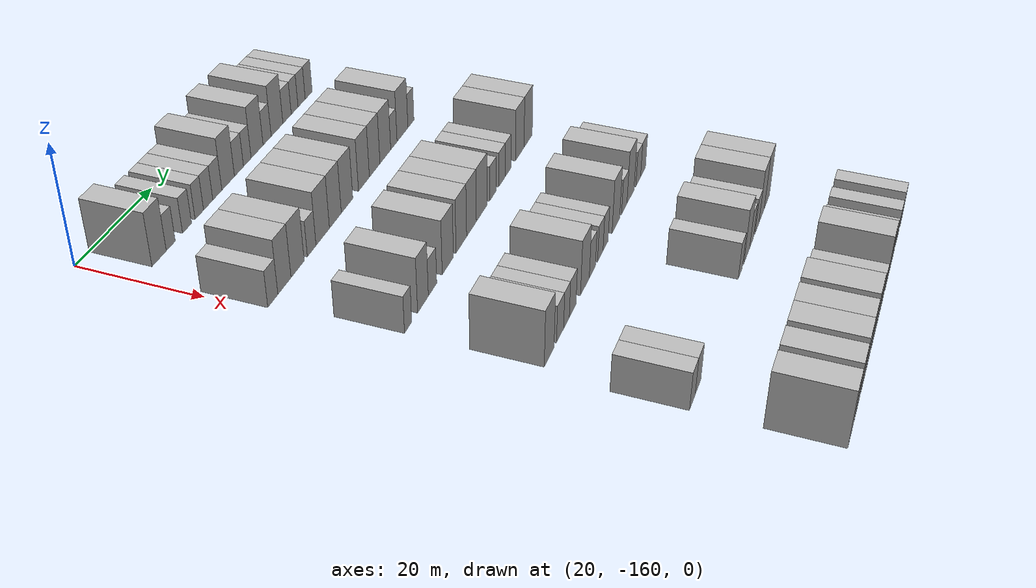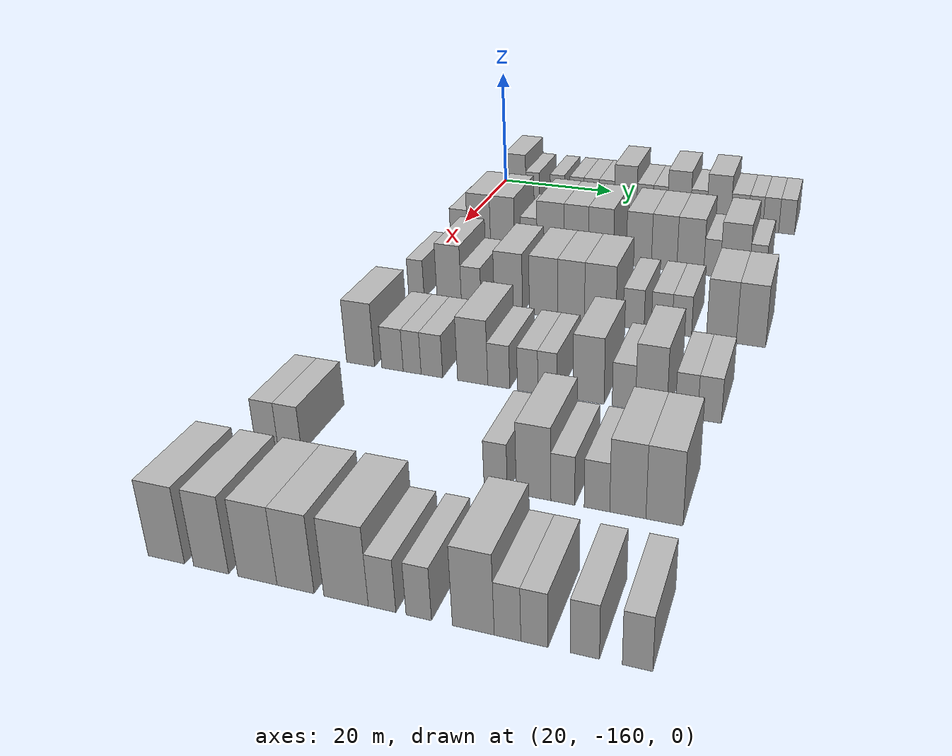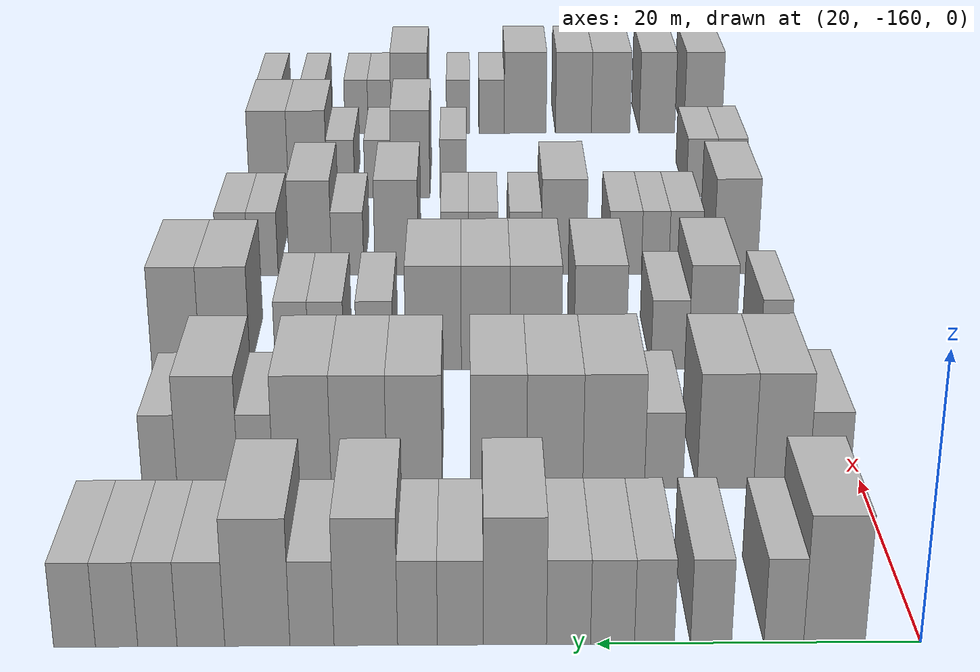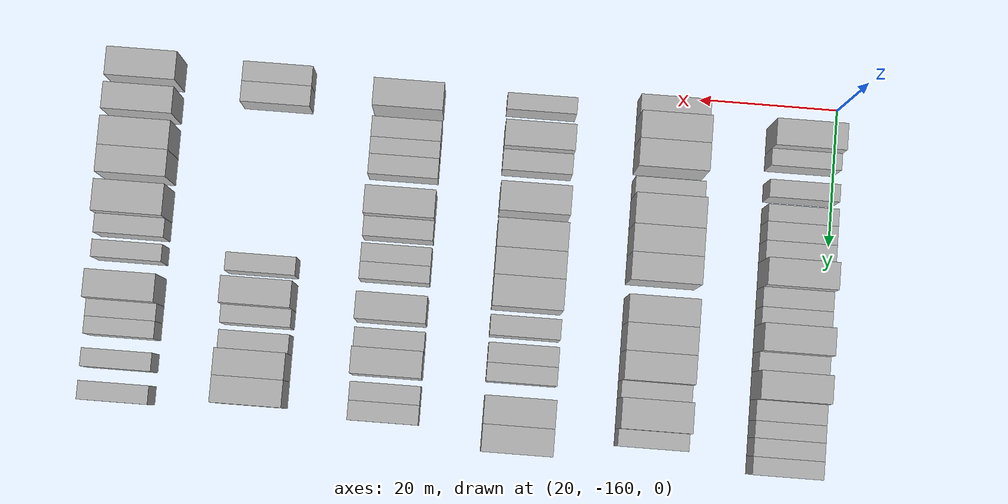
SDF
<sdf version="1.6">
 <world name="default">
  <model name="building_51">
   <static>1</static>
   <pose>25.0000 -154.6381 0 0.000000 0.000000 0.000000</pose>
   <link name="link">
    <pose>0 0 4.50 0 0 0</pose>
    <collision name="collision"><geometry><box><size>10.0000 3.8036 9.0000</size></box></geometry></collision>
    <visual name="visual">
     <cast_shadows>0</cast_shadows>
     <geometry><box><size>10.0000 3.8036 9.0000</size></box></geometry>
     <material>
      <script>
       <uri>model://HANNAS_wall/materials/scripts</uri>
       <uri>model://HANNAS_wall/materials/textures</uri>
       <name>vrc/HANNAS_wall</name>
      </script>
     </material>
    </visual>
   </link>
  </model>
  <model name="building_52">
   <static>1</static>
   <pose>25.0000 -151.5140 0 0.000000 0.000000 0.000000</pose>
   <link name="link">
    <pose>0 0 3.00 0 0 0</pose>
    <collision name="collision"><geometry><box><size>10.0000 2.4446 6.0000</size></box></geometry></collision>
    <visual name="visual">
     <cast_shadows>0</cast_shadows>
     <geometry><box><size>10.0000 2.4446 6.0000</size></box></geometry>
     <material>
      <script>
       <uri>model://HANNAS_wall/materials/scripts</uri>
       <uri>model://HANNAS_wall/materials/textures</uri>
       <name>vrc/HANNAS_wall</name>
      </script>
     </material>
    </visual>
   </link>
  </model>
  <model name="building_53">
   <static>1</static>
   <pose>25.0000 -147.0240 0 0.000000 0.000000 0.000000</pose>
   <link name="link">
    <pose>0 0 3.00 0 0 0</pose>
    <collision name="collision"><geometry><box><size>10.0000 2.5353 6.0000</size></box></geometry></collision>
    <visual name="visual">
     <cast_shadows>0</cast_shadows>
     <geometry><box><size>10.0000 2.5353 6.0000</size></box></geometry>
     <material>
      <script>
       <uri>model://HANNAS_wall/materials/scripts</uri>
       <uri>model://HANNAS_wall/materials/textures</uri>
       <name>vrc/HANNAS_wall</name>
      </script>
     </material>
    </visual>
   </link>
  </model>
  <model name="building_54">
   <static>1</static>
   <pose>25.0000 -143.5289 0 0.000000 0.000000 0.000000</pose>
   <link name="link">
    <pose>0 0 3.00 0 0 0</pose>
    <collision name="collision"><geometry><box><size>10.0000 2.4549 6.0000</size></box></geometry></collision>
    <visual name="visual">
     <cast_shadows>0</cast_shadows>
     <geometry><box><size>10.0000 2.4549 6.0000</size></box></geometry>
     <material>
      <script>
       <uri>model://HANNAS_wall/materials/scripts</uri>
       <uri>model://HANNAS_wall/materials/textures</uri>
       <name>vrc/HANNAS_wall</name>
      </script>
     </material>
    </visual>
   </link>
  </model>
  <model name="building_55">
   <static>1</static>
   <pose>25.0000 -140.9448 0 0.000000 0.000000 0.000000</pose>
   <link name="link">
    <pose>0 0 3.00 0 0 0</pose>
    <collision name="collision"><geometry><box><size>10.0000 2.7134 6.0000</size></box></geometry></collision>
    <visual name="visual">
     <cast_shadows>0</cast_shadows>
     <geometry><box><size>10.0000 2.7134 6.0000</size></box></geometry>
     <material>
      <script>
       <uri>model://HANNAS_wall/materials/scripts</uri>
       <uri>model://HANNAS_wall/materials/textures</uri>
       <name>vrc/HANNAS_wall</name>
      </script>
     </material>
    </visual>
   </link>
  </model>
  <model name="building_56">
   <static>1</static>
   <pose>25.0000 -138.2319 0 0.000000 0.000000 0.000000</pose>
   <link name="link">
    <pose>0 0 3.00 0 0 0</pose>
    <collision name="collision"><geometry><box><size>10.0000 2.7122 6.0000</size></box></geometry></collision>
    <visual name="visual">
     <cast_shadows>0</cast_shadows>
     <geometry><box><size>10.0000 2.7122 6.0000</size></box></geometry>
     <material>
      <script>
       <uri>model://HANNAS_wall/materials/scripts</uri>
       <uri>model://HANNAS_wall/materials/textures</uri>
       <name>vrc/HANNAS_wall</name>
      </script>
     </material>
    </visual>
   </link>
  </model>
  <model name="building_57">
   <static>1</static>
   <pose>25.0000 -134.9331 0 0.000000 0.000000 0.000000</pose>
   <link name="link">
    <pose>0 0 4.50 0 0 0</pose>
    <collision name="collision"><geometry><box><size>10.0000 3.8853 9.0000</size></box></geometry></collision>
    <visual name="visual">
     <cast_shadows>0</cast_shadows>
     <geometry><box><size>10.0000 3.8853 9.0000</size></box></geometry>
     <material>
      <script>
       <uri>model://HANNAS_wall/materials/scripts</uri>
       <uri>model://HANNAS_wall/materials/textures</uri>
       <name>vrc/HANNAS_wall</name>
      </script>
     </material>
    </visual>
   </link>
  </model>
  <model name="building_58">
   <static>1</static>
   <pose>25.0000 -131.5786 0 0.000000 0.000000 0.000000</pose>
   <link name="link">
    <pose>0 0 3.00 0 0 0</pose>
    <collision name="collision"><geometry><box><size>10.0000 2.8238 6.0000</size></box></geometry></collision>
    <visual name="visual">
     <cast_shadows>0</cast_shadows>
     <geometry><box><size>10.0000 2.8238 6.0000</size></box></geometry>
     <material>
      <script>
       <uri>model://HANNAS_wall/materials/scripts</uri>
       <uri>model://HANNAS_wall/materials/textures</uri>
       <name>vrc/HANNAS_wall</name>
      </script>
     </material>
    </visual>
   </link>
  </model>
  <model name="building_59">
   <static>1</static>
   <pose>25.0000 -128.9428 0 0.000000 0.000000 0.000000</pose>
   <link name="link">
    <pose>0 0 3.00 0 0 0</pose>
    <collision name="collision"><geometry><box><size>10.0000 2.4478 6.0000</size></box></geometry></collision>
    <visual name="visual">
     <cast_shadows>0</cast_shadows>
     <geometry><box><size>10.0000 2.4478 6.0000</size></box></geometry>
     <material>
      <script>
       <uri>model://HANNAS_wall/materials/scripts</uri>
       <uri>model://HANNAS_wall/materials/textures</uri>
       <name>vrc/HANNAS_wall</name>
      </script>
     </material>
    </visual>
   </link>
  </model>
  <model name="building_60">
   <static>1</static>
   <pose>25.0000 -125.7645 0 0.000000 0.000000 0.000000</pose>
   <link name="link">
    <pose>0 0 4.50 0 0 0</pose>
    <collision name="collision"><geometry><box><size>10.0000 3.9089 9.0000</size></box></geometry></collision>
    <visual name="visual">
     <cast_shadows>0</cast_shadows>
     <geometry><box><size>10.0000 3.9089 9.0000</size></box></geometry>
     <material>
      <script>
       <uri>model://HANNAS_wall/materials/scripts</uri>
       <uri>model://HANNAS_wall/materials/textures</uri>
       <name>vrc/HANNAS_wall</name>
      </script>
     </material>
    </visual>
   </link>
  </model>
  <model name="building_61">
   <static>1</static>
   <pose>25.0000 -122.4540 0 0.000000 0.000000 0.000000</pose>
   <link name="link">
    <pose>0 0 3.00 0 0 0</pose>
    <collision name="collision"><geometry><box><size>10.0000 2.7120 6.0000</size></box></geometry></collision>
    <visual name="visual">
     <cast_shadows>0</cast_shadows>
     <geometry><box><size>10.0000 2.7120 6.0000</size></box></geometry>
     <material>
      <script>
       <uri>model://HANNAS_wall/materials/scripts</uri>
       <uri>model://HANNAS_wall/materials/textures</uri>
       <name>vrc/HANNAS_wall</name>
      </script>
     </material>
    </visual>
   </link>
  </model>
  <model name="building_62">
   <static>1</static>
   <pose>25.0000 -119.0976 0 0.000000 0.000000 0.000000</pose>
   <link name="link">
    <pose>0 0 4.50 0 0 0</pose>
    <collision name="collision"><geometry><box><size>10.0000 4.0009 9.0000</size></box></geometry></collision>
    <visual name="visual">
     <cast_shadows>0</cast_shadows>
     <geometry><box><size>10.0000 4.0009 9.0000</size></box></geometry>
     <material>
      <script>
       <uri>model://HANNAS_wall/materials/scripts</uri>
       <uri>model://HANNAS_wall/materials/textures</uri>
       <name>vrc/HANNAS_wall</name>
      </script>
     </material>
    </visual>
   </link>
  </model>
  <model name="building_63">
   <static>1</static>
   <pose>25.0000 -115.6321 0 0.000000 0.000000 0.000000</pose>
   <link name="link">
    <pose>0 0 3.00 0 0 0</pose>
    <collision name="collision"><geometry><box><size>10.0000 2.9301 6.0000</size></box></geometry></collision>
    <visual name="visual">
     <cast_shadows>0</cast_shadows>
     <geometry><box><size>10.0000 2.9301 6.0000</size></box></geometry>
     <material>
      <script>
       <uri>model://HANNAS_wall/materials/scripts</uri>
       <uri>model://HANNAS_wall/materials/textures</uri>
       <name>vrc/HANNAS_wall</name>
      </script>
     </material>
    </visual>
   </link>
  </model>
  <model name="building_64">
   <static>1</static>
   <pose>25.0000 -112.9607 0 0.000000 0.000000 0.000000</pose>
   <link name="link">
    <pose>0 0 3.00 0 0 0</pose>
    <collision name="collision"><geometry><box><size>10.0000 2.4127 6.0000</size></box></geometry></collision>
    <visual name="visual">
     <cast_shadows>0</cast_shadows>
     <geometry><box><size>10.0000 2.4127 6.0000</size></box></geometry>
     <material>
      <script>
       <uri>model://HANNAS_wall/materials/scripts</uri>
       <uri>model://HANNAS_wall/materials/textures</uri>
       <name>vrc/HANNAS_wall</name>
      </script>
     </material>
    </visual>
   </link>
  </model>
  <model name="building_65">
   <static>1</static>
   <pose>25.0000 -110.4550 0 0.000000 0.000000 0.000000</pose>
   <link name="link">
    <pose>0 0 3.00 0 0 0</pose>
    <collision name="collision"><geometry><box><size>10.0000 2.5988 6.0000</size></box></geometry></collision>
    <visual name="visual">
     <cast_shadows>0</cast_shadows>
     <geometry><box><size>10.0000 2.5988 6.0000</size></box></geometry>
     <material>
      <script>
       <uri>model://HANNAS_wall/materials/scripts</uri>
       <uri>model://HANNAS_wall/materials/textures</uri>
       <name>vrc/HANNAS_wall</name>
      </script>
     </material>
    </visual>
   </link>
  </model>
  <model name="building_66">
   <static>1</static>
   <pose>25.0000 -107.8737 0 0.000000 0.000000 0.000000</pose>
   <link name="link">
    <pose>0 0 3.00 0 0 0</pose>
    <collision name="collision"><geometry><box><size>10.0000 2.5639 6.0000</size></box></geometry></collision>
    <visual name="visual">
     <cast_shadows>0</cast_shadows>
     <geometry><box><size>10.0000 2.5639 6.0000</size></box></geometry>
     <material>
      <script>
       <uri>model://HANNAS_wall/materials/scripts</uri>
       <uri>model://HANNAS_wall/materials/textures</uri>
       <name>vrc/HANNAS_wall</name>
      </script>
     </material>
    </visual>
   </link>
  </model>
  <model name="building_221">
   <static>1</static>
   <pose>44.0000 -157.6429 0 0.000000 0.000000 0.000000</pose>
   <link name="link">
    <pose>0 0 3.00 0 0 0</pose>
    <collision name="collision"><geometry><box><size>10.0000 2.9056 6.0000</size></box></geometry></collision>
    <visual name="visual">
     <cast_shadows>0</cast_shadows>
     <geometry><box><size>10.0000 2.9056 6.0000</size></box></geometry>
     <material>
      <script>
       <uri>model://HANNAS_wall/materials/scripts</uri>
       <uri>model://HANNAS_wall/materials/textures</uri>
       <name>vrc/HANNAS_wall</name>
      </script>
     </material>
    </visual>
   </link>
  </model>
  <model name="building_222">
   <static>1</static>
   <pose>44.0000 -154.2381 0 0.000000 0.000000 0.000000</pose>
   <link name="link">
    <pose>0 0 4.50 0 0 0</pose>
    <collision name="collision"><geometry><box><size>10.0000 3.9039 9.0000</size></box></geometry></collision>
    <visual name="visual">
     <cast_shadows>0</cast_shadows>
     <geometry><box><size>10.0000 3.9039 9.0000</size></box></geometry>
     <material>
      <script>
       <uri>model://HANNAS_wall/materials/scripts</uri>
       <uri>model://HANNAS_wall/materials/textures</uri>
       <name>vrc/HANNAS_wall</name>
      </script>
     </material>
    </visual>
   </link>
  </model>
  <model name="building_223">
   <static>1</static>
   <pose>44.0000 -150.2800 0 0.000000 0.000000 0.000000</pose>
   <link name="link">
    <pose>0 0 4.50 0 0 0</pose>
    <collision name="collision"><geometry><box><size>10.0000 4.0124 9.0000</size></box></geometry></collision>
    <visual name="visual">
     <cast_shadows>0</cast_shadows>
     <geometry><box><size>10.0000 4.0124 9.0000</size></box></geometry>
     <material>
      <script>
       <uri>model://HANNAS_wall/materials/scripts</uri>
       <uri>model://HANNAS_wall/materials/textures</uri>
       <name>vrc/HANNAS_wall</name>
      </script>
     </material>
    </visual>
   </link>
  </model>
  <model name="building_224">
   <static>1</static>
   <pose>44.0000 -145.9101 0 0.000000 0.000000 0.000000</pose>
   <link name="link">
    <pose>0 0 3.00 0 0 0</pose>
    <collision name="collision"><geometry><box><size>10.0000 2.7274 6.0000</size></box></geometry></collision>
    <visual name="visual">
     <cast_shadows>0</cast_shadows>
     <geometry><box><size>10.0000 2.7274 6.0000</size></box></geometry>
     <material>
      <script>
       <uri>model://HANNAS_wall/materials/scripts</uri>
       <uri>model://HANNAS_wall/materials/textures</uri>
       <name>vrc/HANNAS_wall</name>
      </script>
     </material>
    </visual>
   </link>
  </model>
  <model name="building_225">
   <static>1</static>
   <pose>44.0000 -142.3598 0 0.000000 0.000000 0.000000</pose>
   <link name="link">
    <pose>0 0 4.50 0 0 0</pose>
    <collision name="collision"><geometry><box><size>10.0000 4.3731 9.0000</size></box></geometry></collision>
    <visual name="visual">
     <cast_shadows>0</cast_shadows>
     <geometry><box><size>10.0000 4.3731 9.0000</size></box></geometry>
     <material>
      <script>
       <uri>model://HANNAS_wall/materials/scripts</uri>
       <uri>model://HANNAS_wall/materials/textures</uri>
       <name>vrc/HANNAS_wall</name>
      </script>
     </material>
    </visual>
   </link>
  </model>
  <model name="building_226">
   <static>1</static>
   <pose>44.0000 -138.1870 0 0.000000 0.000000 0.000000</pose>
   <link name="link">
    <pose>0 0 4.50 0 0 0</pose>
    <collision name="collision"><geometry><box><size>10.0000 3.9726 9.0000</size></box></geometry></collision>
    <visual name="visual">
     <cast_shadows>0</cast_shadows>
     <geometry><box><size>10.0000 3.9726 9.0000</size></box></geometry>
     <material>
      <script>
       <uri>model://HANNAS_wall/materials/scripts</uri>
       <uri>model://HANNAS_wall/materials/textures</uri>
       <name>vrc/HANNAS_wall</name>
      </script>
     </material>
    </visual>
   </link>
  </model>
  <model name="building_227">
   <static>1</static>
   <pose>44.0000 -134.2184 0 0.000000 0.000000 0.000000</pose>
   <link name="link">
    <pose>0 0 4.50 0 0 0</pose>
    <collision name="collision"><geometry><box><size>10.0000 3.9646 9.0000</size></box></geometry></collision>
    <visual name="visual">
     <cast_shadows>0</cast_shadows>
     <geometry><box><size>10.0000 3.9646 9.0000</size></box></geometry>
     <material>
      <script>
       <uri>model://HANNAS_wall/materials/scripts</uri>
       <uri>model://HANNAS_wall/materials/textures</uri>
       <name>vrc/HANNAS_wall</name>
      </script>
     </material>
    </visual>
   </link>
  </model>
  <model name="building_228">
   <static>1</static>
   <pose>44.0000 -128.2753 0 0.000000 0.000000 0.000000</pose>
   <link name="link">
    <pose>0 0 4.50 0 0 0</pose>
    <collision name="collision"><geometry><box><size>10.0000 3.9215 9.0000</size></box></geometry></collision>
    <visual name="visual">
     <cast_shadows>0</cast_shadows>
     <geometry><box><size>10.0000 3.9215 9.0000</size></box></geometry>
     <material>
      <script>
       <uri>model://HANNAS_wall/materials/scripts</uri>
       <uri>model://HANNAS_wall/materials/textures</uri>
       <name>vrc/HANNAS_wall</name>
      </script>
     </material>
    </visual>
   </link>
  </model>
  <model name="building_229">
   <static>1</static>
   <pose>44.0000 -124.3559 0 0.000000 0.000000 0.000000</pose>
   <link name="link">
    <pose>0 0 4.50 0 0 0</pose>
    <collision name="collision"><geometry><box><size>10.0000 3.9173 9.0000</size></box></geometry></collision>
    <visual name="visual">
     <cast_shadows>0</cast_shadows>
     <geometry><box><size>10.0000 3.9173 9.0000</size></box></geometry>
     <material>
      <script>
       <uri>model://HANNAS_wall/materials/scripts</uri>
       <uri>model://HANNAS_wall/materials/textures</uri>
       <name>vrc/HANNAS_wall</name>
      </script>
     </material>
    </visual>
   </link>
  </model>
  <model name="building_230">
   <static>1</static>
   <pose>44.0000 -120.3570 0 0.000000 0.000000 0.000000</pose>
   <link name="link">
    <pose>0 0 4.50 0 0 0</pose>
    <collision name="collision"><geometry><box><size>10.0000 4.0806 9.0000</size></box></geometry></collision>
    <visual name="visual">
     <cast_shadows>0</cast_shadows>
     <geometry><box><size>10.0000 4.0806 9.0000</size></box></geometry>
     <material>
      <script>
       <uri>model://HANNAS_wall/materials/scripts</uri>
       <uri>model://HANNAS_wall/materials/textures</uri>
       <name>vrc/HANNAS_wall</name>
      </script>
     </material>
    </visual>
   </link>
  </model>
  <model name="building_231">
   <static>1</static>
   <pose>44.0000 -117.0865 0 0.000000 0.000000 0.000000</pose>
   <link name="link">
    <pose>0 0 3.00 0 0 0</pose>
    <collision name="collision"><geometry><box><size>10.0000 2.4603 6.0000</size></box></geometry></collision>
    <visual name="visual">
     <cast_shadows>0</cast_shadows>
     <geometry><box><size>10.0000 2.4603 6.0000</size></box></geometry>
     <material>
      <script>
       <uri>model://HANNAS_wall/materials/scripts</uri>
       <uri>model://HANNAS_wall/materials/textures</uri>
       <name>vrc/HANNAS_wall</name>
      </script>
     </material>
    </visual>
   </link>
  </model>
  <model name="building_232">
   <static>1</static>
   <pose>44.0000 -113.6956 0 0.000000 0.000000 0.000000</pose>
   <link name="link">
    <pose>0 0 4.50 0 0 0</pose>
    <collision name="collision"><geometry><box><size>10.0000 4.3216 9.0000</size></box></geometry></collision>
    <visual name="visual">
     <cast_shadows>0</cast_shadows>
     <geometry><box><size>10.0000 4.3216 9.0000</size></box></geometry>
     <material>
      <script>
       <uri>model://HANNAS_wall/materials/scripts</uri>
       <uri>model://HANNAS_wall/materials/textures</uri>
       <name>vrc/HANNAS_wall</name>
      </script>
     </material>
    </visual>
   </link>
  </model>
  <model name="building_233">
   <static>1</static>
   <pose>44.0000 -110.3074 0 0.000000 0.000000 0.000000</pose>
   <link name="link">
    <pose>0 0 3.00 0 0 0</pose>
    <collision name="collision"><geometry><box><size>10.0000 2.4548 6.0000</size></box></geometry></collision>
    <visual name="visual">
     <cast_shadows>0</cast_shadows>
     <geometry><box><size>10.0000 2.4548 6.0000</size></box></geometry>
     <material>
      <script>
       <uri>model://HANNAS_wall/materials/scripts</uri>
       <uri>model://HANNAS_wall/materials/textures</uri>
       <name>vrc/HANNAS_wall</name>
      </script>
     </material>
    </visual>
   </link>
  </model>
  <model name="building_384">
   <static>1</static>
   <pose>63.0000 -156.6122 0 0.000000 0.000000 0.000000</pose>
   <link name="link">
    <pose>0 0 3.00 0 0 0</pose>
    <collision name="collision"><geometry><box><size>10.0000 2.4017 6.0000</size></box></geometry></collision>
    <visual name="visual">
     <cast_shadows>0</cast_shadows>
     <geometry><box><size>10.0000 2.4017 6.0000</size></box></geometry>
     <material>
      <script>
       <uri>model://HANNAS_wall/materials/scripts</uri>
       <uri>model://HANNAS_wall/materials/textures</uri>
       <name>vrc/HANNAS_wall</name>
      </script>
     </material>
    </visual>
   </link>
  </model>
  <model name="building_385">
   <static>1</static>
   <pose>63.0000 -151.5436 0 0.000000 0.000000 0.000000</pose>
   <link name="link">
    <pose>0 0 4.50 0 0 0</pose>
    <collision name="collision"><geometry><box><size>10.0000 3.7355 9.0000</size></box></geometry></collision>
    <visual name="visual">
     <cast_shadows>0</cast_shadows>
     <geometry><box><size>10.0000 3.7355 9.0000</size></box></geometry>
     <material>
      <script>
       <uri>model://HANNAS_wall/materials/scripts</uri>
       <uri>model://HANNAS_wall/materials/textures</uri>
       <name>vrc/HANNAS_wall</name>
      </script>
     </material>
    </visual>
   </link>
  </model>
  <model name="building_386">
   <static>1</static>
   <pose>63.0000 -148.1850 0 0.000000 0.000000 0.000000</pose>
   <link name="link">
    <pose>0 0 3.00 0 0 0</pose>
    <collision name="collision"><geometry><box><size>10.0000 2.9816 6.0000</size></box></geometry></collision>
    <visual name="visual">
     <cast_shadows>0</cast_shadows>
     <geometry><box><size>10.0000 2.9816 6.0000</size></box></geometry>
     <material>
      <script>
       <uri>model://HANNAS_wall/materials/scripts</uri>
       <uri>model://HANNAS_wall/materials/textures</uri>
       <name>vrc/HANNAS_wall</name>
      </script>
     </material>
    </visual>
   </link>
  </model>
  <model name="building_387">
   <static>1</static>
   <pose>63.0000 -142.6049 0 0.000000 0.000000 0.000000</pose>
   <link name="link">
    <pose>0 0 4.50 0 0 0</pose>
    <collision name="collision"><geometry><box><size>10.0000 4.1786 9.0000</size></box></geometry></collision>
    <visual name="visual">
     <cast_shadows>0</cast_shadows>
     <geometry><box><size>10.0000 4.1786 9.0000</size></box></geometry>
     <material>
      <script>
       <uri>model://HANNAS_wall/materials/scripts</uri>
       <uri>model://HANNAS_wall/materials/textures</uri>
       <name>vrc/HANNAS_wall</name>
      </script>
     </material>
    </visual>
   </link>
  </model>
  <model name="building_388">
   <static>1</static>
   <pose>63.0000 -137.4651 0 0.000000 0.000000 0.000000</pose>
   <link name="link">
    <pose>0 0 4.50 0 0 0</pose>
    <collision name="collision"><geometry><box><size>10.0000 4.1010 9.0000</size></box></geometry></collision>
    <visual name="visual">
     <cast_shadows>0</cast_shadows>
     <geometry><box><size>10.0000 4.1010 9.0000</size></box></geometry>
     <material>
      <script>
       <uri>model://HANNAS_wall/materials/scripts</uri>
       <uri>model://HANNAS_wall/materials/textures</uri>
       <name>vrc/HANNAS_wall</name>
      </script>
     </material>
    </visual>
   </link>
  </model>
  <model name="building_389">
   <static>1</static>
   <pose>63.0000 -133.4780 0 0.000000 0.000000 0.000000</pose>
   <link name="link">
    <pose>0 0 4.50 0 0 0</pose>
    <collision name="collision"><geometry><box><size>10.0000 3.8732 9.0000</size></box></geometry></collision>
    <visual name="visual">
     <cast_shadows>0</cast_shadows>
     <geometry><box><size>10.0000 3.8732 9.0000</size></box></geometry>
     <material>
      <script>
       <uri>model://HANNAS_wall/materials/scripts</uri>
       <uri>model://HANNAS_wall/materials/textures</uri>
       <name>vrc/HANNAS_wall</name>
      </script>
     </material>
    </visual>
   </link>
  </model>
  <model name="building_390">
   <static>1</static>
   <pose>63.0000 -129.3235 0 0.000000 0.000000 0.000000</pose>
   <link name="link">
    <pose>0 0 4.50 0 0 0</pose>
    <collision name="collision"><geometry><box><size>10.0000 4.4359 9.0000</size></box></geometry></collision>
    <visual name="visual">
     <cast_shadows>0</cast_shadows>
     <geometry><box><size>10.0000 4.4359 9.0000</size></box></geometry>
     <material>
      <script>
       <uri>model://HANNAS_wall/materials/scripts</uri>
       <uri>model://HANNAS_wall/materials/textures</uri>
       <name>vrc/HANNAS_wall</name>
      </script>
     </material>
    </visual>
   </link>
  </model>
  <model name="building_391">
   <static>1</static>
   <pose>63.0000 -124.6466 0 0.000000 0.000000 0.000000</pose>
   <link name="link">
    <pose>0 0 3.00 0 0 0</pose>
    <collision name="collision"><geometry><box><size>10.0000 2.9177 6.0000</size></box></geometry></collision>
    <visual name="visual">
     <cast_shadows>0</cast_shadows>
     <geometry><box><size>10.0000 2.9177 6.0000</size></box></geometry>
     <material>
      <script>
       <uri>model://HANNAS_wall/materials/scripts</uri>
       <uri>model://HANNAS_wall/materials/textures</uri>
       <name>vrc/HANNAS_wall</name>
      </script>
     </material>
    </visual>
   </link>
  </model>
  <model name="building_392">
   <static>1</static>
   <pose>63.0000 -120.7719 0 0.000000 0.000000 0.000000</pose>
   <link name="link">
    <pose>0 0 3.00 0 0 0</pose>
    <collision name="collision"><geometry><box><size>10.0000 2.8318 6.0000</size></box></geometry></collision>
    <visual name="visual">
     <cast_shadows>0</cast_shadows>
     <geometry><box><size>10.0000 2.8318 6.0000</size></box></geometry>
     <material>
      <script>
       <uri>model://HANNAS_wall/materials/scripts</uri>
       <uri>model://HANNAS_wall/materials/textures</uri>
       <name>vrc/HANNAS_wall</name>
      </script>
     </material>
    </visual>
   </link>
  </model>
  <model name="building_393">
   <static>1</static>
   <pose>63.0000 -118.0298 0 0.000000 0.000000 0.000000</pose>
   <link name="link">
    <pose>0 0 3.00 0 0 0</pose>
    <collision name="collision"><geometry><box><size>10.0000 2.6523 6.0000</size></box></geometry></collision>
    <visual name="visual">
     <cast_shadows>0</cast_shadows>
     <geometry><box><size>10.0000 2.6523 6.0000</size></box></geometry>
     <material>
      <script>
       <uri>model://HANNAS_wall/materials/scripts</uri>
       <uri>model://HANNAS_wall/materials/textures</uri>
       <name>vrc/HANNAS_wall</name>
      </script>
     </material>
    </visual>
   </link>
  </model>
  <model name="building_394">
   <static>1</static>
   <pose>63.0000 -112.7098 0 0.000000 0.000000 0.000000</pose>
   <link name="link">
    <pose>0 0 4.50 0 0 0</pose>
    <collision name="collision"><geometry><box><size>10.0000 3.9877 9.0000</size></box></geometry></collision>
    <visual name="visual">
     <cast_shadows>0</cast_shadows>
     <geometry><box><size>10.0000 3.9877 9.0000</size></box></geometry>
     <material>
      <script>
       <uri>model://HANNAS_wall/materials/scripts</uri>
       <uri>model://HANNAS_wall/materials/textures</uri>
       <name>vrc/HANNAS_wall</name>
      </script>
     </material>
    </visual>
   </link>
  </model>
  <model name="building_395">
   <static>1</static>
   <pose>63.0000 -108.7933 0 0.000000 0.000000 0.000000</pose>
   <link name="link">
    <pose>0 0 4.50 0 0 0</pose>
    <collision name="collision"><geometry><box><size>10.0000 3.8453 9.0000</size></box></geometry></collision>
    <visual name="visual">
     <cast_shadows>0</cast_shadows>
     <geometry><box><size>10.0000 3.8453 9.0000</size></box></geometry>
     <material>
      <script>
       <uri>model://HANNAS_wall/materials/scripts</uri>
       <uri>model://HANNAS_wall/materials/textures</uri>
       <name>vrc/HANNAS_wall</name>
      </script>
     </material>
    </visual>
   </link>
  </model>
  <model name="building_561">
   <static>1</static>
   <pose>82.0000 -155.9069 0 0.000000 0.000000 0.000000</pose>
   <link name="link">
    <pose>0 0 4.50 0 0 0</pose>
    <collision name="collision"><geometry><box><size>10.0000 3.9412 9.0000</size></box></geometry></collision>
    <visual name="visual">
     <cast_shadows>0</cast_shadows>
     <geometry><box><size>10.0000 3.9412 9.0000</size></box></geometry>
     <material>
      <script>
       <uri>model://HANNAS_wall/materials/scripts</uri>
       <uri>model://HANNAS_wall/materials/textures</uri>
       <name>vrc/HANNAS_wall</name>
      </script>
     </material>
    </visual>
   </link>
  </model>
  <model name="building_562">
   <static>1</static>
   <pose>82.0000 -151.4589 0 0.000000 0.000000 0.000000</pose>
   <link name="link">
    <pose>0 0 3.00 0 0 0</pose>
    <collision name="collision"><geometry><box><size>10.0000 2.9547 6.0000</size></box></geometry></collision>
    <visual name="visual">
     <cast_shadows>0</cast_shadows>
     <geometry><box><size>10.0000 2.9547 6.0000</size></box></geometry>
     <material>
      <script>
       <uri>model://HANNAS_wall/materials/scripts</uri>
       <uri>model://HANNAS_wall/materials/textures</uri>
       <name>vrc/HANNAS_wall</name>
      </script>
     </material>
    </visual>
   </link>
  </model>
  <model name="building_563">
   <static>1</static>
   <pose>82.0000 -148.7580 0 0.000000 0.000000 0.000000</pose>
   <link name="link">
    <pose>0 0 3.00 0 0 0</pose>
    <collision name="collision"><geometry><box><size>10.0000 2.4472 6.0000</size></box></geometry></collision>
    <visual name="visual">
     <cast_shadows>0</cast_shadows>
     <geometry><box><size>10.0000 2.4472 6.0000</size></box></geometry>
     <material>
      <script>
       <uri>model://HANNAS_wall/materials/scripts</uri>
       <uri>model://HANNAS_wall/materials/textures</uri>
       <name>vrc/HANNAS_wall</name>
      </script>
     </material>
    </visual>
   </link>
  </model>
  <model name="building_564">
   <static>1</static>
   <pose>82.0000 -146.0774 0 0.000000 0.000000 0.000000</pose>
   <link name="link">
    <pose>0 0 3.00 0 0 0</pose>
    <collision name="collision"><geometry><box><size>10.0000 2.9139 6.0000</size></box></geometry></collision>
    <visual name="visual">
     <cast_shadows>0</cast_shadows>
     <geometry><box><size>10.0000 2.9139 6.0000</size></box></geometry>
     <material>
      <script>
       <uri>model://HANNAS_wall/materials/scripts</uri>
       <uri>model://HANNAS_wall/materials/textures</uri>
       <name>vrc/HANNAS_wall</name>
      </script>
     </material>
    </visual>
   </link>
  </model>
  <model name="building_565">
   <static>1</static>
   <pose>82.0000 -140.6217 0 0.000000 0.000000 0.000000</pose>
   <link name="link">
    <pose>0 0 4.50 0 0 0</pose>
    <collision name="collision"><geometry><box><size>10.0000 3.9975 9.0000</size></box></geometry></collision>
    <visual name="visual">
     <cast_shadows>0</cast_shadows>
     <geometry><box><size>10.0000 3.9975 9.0000</size></box></geometry>
     <material>
      <script>
       <uri>model://HANNAS_wall/materials/scripts</uri>
       <uri>model://HANNAS_wall/materials/textures</uri>
       <name>vrc/HANNAS_wall</name>
      </script>
     </material>
    </visual>
   </link>
  </model>
  <model name="building_566">
   <static>1</static>
   <pose>82.0000 -137.1920 0 0.000000 0.000000 0.000000</pose>
   <link name="link">
    <pose>0 0 3.00 0 0 0</pose>
    <collision name="collision"><geometry><box><size>10.0000 2.8619 6.0000</size></box></geometry></collision>
    <visual name="visual">
     <cast_shadows>0</cast_shadows>
     <geometry><box><size>10.0000 2.8619 6.0000</size></box></geometry>
     <material>
      <script>
       <uri>model://HANNAS_wall/materials/scripts</uri>
       <uri>model://HANNAS_wall/materials/textures</uri>
       <name>vrc/HANNAS_wall</name>
      </script>
     </material>
    </visual>
   </link>
  </model>
  <model name="building_567">
   <static>1</static>
   <pose>82.0000 -133.4458 0 0.000000 0.000000 0.000000</pose>
   <link name="link">
    <pose>0 0 3.00 0 0 0</pose>
    <collision name="collision"><geometry><box><size>10.0000 2.6306 6.0000</size></box></geometry></collision>
    <visual name="visual">
     <cast_shadows>0</cast_shadows>
     <geometry><box><size>10.0000 2.6306 6.0000</size></box></geometry>
     <material>
      <script>
       <uri>model://HANNAS_wall/materials/scripts</uri>
       <uri>model://HANNAS_wall/materials/textures</uri>
       <name>vrc/HANNAS_wall</name>
      </script>
     </material>
    </visual>
   </link>
  </model>
  <model name="building_568">
   <static>1</static>
   <pose>82.0000 -130.9004 0 0.000000 0.000000 0.000000</pose>
   <link name="link">
    <pose>0 0 3.00 0 0 0</pose>
    <collision name="collision"><geometry><box><size>10.0000 2.4604 6.0000</size></box></geometry></collision>
    <visual name="visual">
     <cast_shadows>0</cast_shadows>
     <geometry><box><size>10.0000 2.4604 6.0000</size></box></geometry>
     <material>
      <script>
       <uri>model://HANNAS_wall/materials/scripts</uri>
       <uri>model://HANNAS_wall/materials/textures</uri>
       <name>vrc/HANNAS_wall</name>
      </script>
     </material>
    </visual>
   </link>
  </model>
  <model name="building_569">
   <static>1</static>
   <pose>82.0000 -125.7445 0 0.000000 0.000000 0.000000</pose>
   <link name="link">
    <pose>0 0 4.50 0 0 0</pose>
    <collision name="collision"><geometry><box><size>10.0000 3.8513 9.0000</size></box></geometry></collision>
    <visual name="visual">
     <cast_shadows>0</cast_shadows>
     <geometry><box><size>10.0000 3.8513 9.0000</size></box></geometry>
     <material>
      <script>
       <uri>model://HANNAS_wall/materials/scripts</uri>
       <uri>model://HANNAS_wall/materials/textures</uri>
       <name>vrc/HANNAS_wall</name>
      </script>
     </material>
    </visual>
   </link>
  </model>
  <model name="building_570">
   <static>1</static>
   <pose>82.0000 -121.3957 0 0.000000 0.000000 0.000000</pose>
   <link name="link">
    <pose>0 0 3.00 0 0 0</pose>
    <collision name="collision"><geometry><box><size>10.0000 2.8463 6.0000</size></box></geometry></collision>
    <visual name="visual">
     <cast_shadows>0</cast_shadows>
     <geometry><box><size>10.0000 2.8463 6.0000</size></box></geometry>
     <material>
      <script>
       <uri>model://HANNAS_wall/materials/scripts</uri>
       <uri>model://HANNAS_wall/materials/textures</uri>
       <name>vrc/HANNAS_wall</name>
      </script>
     </material>
    </visual>
   </link>
  </model>
  <model name="building_571">
   <static>1</static>
   <pose>82.0000 -118.0819 0 0.000000 0.000000 0.000000</pose>
   <link name="link">
    <pose>0 0 4.50 0 0 0</pose>
    <collision name="collision"><geometry><box><size>10.0000 3.7815 9.0000</size></box></geometry></collision>
    <visual name="visual">
     <cast_shadows>0</cast_shadows>
     <geometry><box><size>10.0000 3.7815 9.0000</size></box></geometry>
     <material>
      <script>
       <uri>model://HANNAS_wall/materials/scripts</uri>
       <uri>model://HANNAS_wall/materials/textures</uri>
       <name>vrc/HANNAS_wall</name>
      </script>
     </material>
    </visual>
   </link>
  </model>
  <model name="building_572">
   <static>1</static>
   <pose>82.0000 -113.8651 0 0.000000 0.000000 0.000000</pose>
   <link name="link">
    <pose>0 0 3.00 0 0 0</pose>
    <collision name="collision"><geometry><box><size>10.0000 2.6520 6.0000</size></box></geometry></collision>
    <visual name="visual">
     <cast_shadows>0</cast_shadows>
     <geometry><box><size>10.0000 2.6520 6.0000</size></box></geometry>
     <material>
      <script>
       <uri>model://HANNAS_wall/materials/scripts</uri>
       <uri>model://HANNAS_wall/materials/textures</uri>
       <name>vrc/HANNAS_wall</name>
      </script>
     </material>
    </visual>
   </link>
  </model>
  <model name="building_573">
   <static>1</static>
   <pose>82.0000 -111.1493 0 0.000000 0.000000 0.000000</pose>
   <link name="link">
    <pose>0 0 3.00 0 0 0</pose>
    <collision name="collision"><geometry><box><size>10.0000 2.7796 6.0000</size></box></geometry></collision>
    <visual name="visual">
     <cast_shadows>0</cast_shadows>
     <geometry><box><size>10.0000 2.7796 6.0000</size></box></geometry>
     <material>
      <script>
       <uri>model://HANNAS_wall/materials/scripts</uri>
       <uri>model://HANNAS_wall/materials/textures</uri>
       <name>vrc/HANNAS_wall</name>
      </script>
     </material>
    </visual>
   </link>
  </model>
  <model name="building_739">
   <static>1</static>
   <pose>101.0000 -157.9604 0 0.000000 0.000000 0.000000</pose>
   <link name="link">
    <pose>0 0 3.00 0 0 0</pose>
    <collision name="collision"><geometry><box><size>10.0000 2.8857 6.0000</size></box></geometry></collision>
    <visual name="visual">
     <cast_shadows>0</cast_shadows>
     <geometry><box><size>10.0000 2.8857 6.0000</size></box></geometry>
     <material>
      <script>
       <uri>model://HANNAS_wall/materials/scripts</uri>
       <uri>model://HANNAS_wall/materials/textures</uri>
       <name>vrc/HANNAS_wall</name>
      </script>
     </material>
    </visual>
   </link>
  </model>
  <model name="building_740">
   <static>1</static>
   <pose>101.0000 -155.0400 0 0.000000 0.000000 0.000000</pose>
   <link name="link">
    <pose>0 0 3.00 0 0 0</pose>
    <collision name="collision"><geometry><box><size>10.0000 2.9551 6.0000</size></box></geometry></collision>
    <visual name="visual">
     <cast_shadows>0</cast_shadows>
     <geometry><box><size>10.0000 2.9551 6.0000</size></box></geometry>
     <material>
      <script>
       <uri>model://HANNAS_wall/materials/scripts</uri>
       <uri>model://HANNAS_wall/materials/textures</uri>
       <name>vrc/HANNAS_wall</name>
      </script>
     </material>
    </visual>
   </link>
  </model>
  <model name="building_741">
   <static>1</static>
   <pose>101.0000 -130.6577 0 0.000000 0.000000 0.000000</pose>
   <link name="link">
    <pose>0 0 3.00 0 0 0</pose>
    <collision name="collision"><geometry><box><size>10.0000 2.6032 6.0000</size></box></geometry></collision>
    <visual name="visual">
     <cast_shadows>0</cast_shadows>
     <geometry><box><size>10.0000 2.6032 6.0000</size></box></geometry>
     <material>
      <script>
       <uri>model://HANNAS_wall/materials/scripts</uri>
       <uri>model://HANNAS_wall/materials/textures</uri>
       <name>vrc/HANNAS_wall</name>
      </script>
     </material>
    </visual>
   </link>
  </model>
  <model name="building_742">
   <static>1</static>
   <pose>101.0000 -126.4607 0 0.000000 0.000000 0.000000</pose>
   <link name="link">
    <pose>0 0 4.50 0 0 0</pose>
    <collision name="collision"><geometry><box><size>10.0000 3.7909 9.0000</size></box></geometry></collision>
    <visual name="visual">
     <cast_shadows>0</cast_shadows>
     <geometry><box><size>10.0000 3.7909 9.0000</size></box></geometry>
     <material>
      <script>
       <uri>model://HANNAS_wall/materials/scripts</uri>
       <uri>model://HANNAS_wall/materials/textures</uri>
       <name>vrc/HANNAS_wall</name>
      </script>
     </material>
    </visual>
   </link>
  </model>
  <model name="building_743">
   <static>1</static>
   <pose>101.0000 -123.2743 0 0.000000 0.000000 0.000000</pose>
   <link name="link">
    <pose>0 0 3.00 0 0 0</pose>
    <collision name="collision"><geometry><box><size>10.0000 2.5817 6.0000</size></box></geometry></collision>
    <visual name="visual">
     <cast_shadows>0</cast_shadows>
     <geometry><box><size>10.0000 2.5817 6.0000</size></box></geometry>
     <material>
      <script>
       <uri>model://HANNAS_wall/materials/scripts</uri>
       <uri>model://HANNAS_wall/materials/textures</uri>
       <name>vrc/HANNAS_wall</name>
      </script>
     </material>
    </visual>
   </link>
  </model>
  <model name="building_744">
   <static>1</static>
   <pose>101.0000 -119.6280 0 0.000000 0.000000 0.000000</pose>
   <link name="link">
    <pose>0 0 3.00 0 0 0</pose>
    <collision name="collision"><geometry><box><size>10.0000 2.7110 6.0000</size></box></geometry></collision>
    <visual name="visual">
     <cast_shadows>0</cast_shadows>
     <geometry><box><size>10.0000 2.7110 6.0000</size></box></geometry>
     <material>
      <script>
       <uri>model://HANNAS_wall/materials/scripts</uri>
       <uri>model://HANNAS_wall/materials/textures</uri>
       <name>vrc/HANNAS_wall</name>
      </script>
     </material>
    </visual>
   </link>
  </model>
  <model name="building_745">
   <static>1</static>
   <pose>101.0000 -116.3821 0 0.000000 0.000000 0.000000</pose>
   <link name="link">
    <pose>0 0 4.50 0 0 0</pose>
    <collision name="collision"><geometry><box><size>10.0000 3.7808 9.0000</size></box></geometry></collision>
    <visual name="visual">
     <cast_shadows>0</cast_shadows>
     <geometry><box><size>10.0000 3.7808 9.0000</size></box></geometry>
     <material>
      <script>
       <uri>model://HANNAS_wall/materials/scripts</uri>
       <uri>model://HANNAS_wall/materials/textures</uri>
       <name>vrc/HANNAS_wall</name>
      </script>
     </material>
    </visual>
   </link>
  </model>
  <model name="building_746">
   <static>1</static>
   <pose>101.0000 -112.5859 0 0.000000 0.000000 0.000000</pose>
   <link name="link">
    <pose>0 0 4.50 0 0 0</pose>
    <collision name="collision"><geometry><box><size>10.0000 3.8115 9.0000</size></box></geometry></collision>
    <visual name="visual">
     <cast_shadows>0</cast_shadows>
     <geometry><box><size>10.0000 3.8115 9.0000</size></box></geometry>
     <material>
      <script>
       <uri>model://HANNAS_wall/materials/scripts</uri>
       <uri>model://HANNAS_wall/materials/textures</uri>
       <name>vrc/HANNAS_wall</name>
      </script>
     </material>
    </visual>
   </link>
  </model>
  <model name="building_905">
   <static>1</static>
   <pose>120.0000 -157.3634 0 0.000000 0.000000 0.000000</pose>
   <link name="link">
    <pose>0 0 4.50 0 0 0</pose>
    <collision name="collision"><geometry><box><size>10.0000 4.0676 9.0000</size></box></geometry></collision>
    <visual name="visual">
     <cast_shadows>0</cast_shadows>
     <geometry><box><size>10.0000 4.0676 9.0000</size></box></geometry>
     <material>
      <script>
       <uri>model://HANNAS_wall/materials/scripts</uri>
       <uri>model://HANNAS_wall/materials/textures</uri>
       <name>vrc/HANNAS_wall</name>
      </script>
     </material>
    </visual>
   </link>
  </model>
  <model name="building_906">
   <static>1</static>
   <pose>120.0000 -152.4222 0 0.000000 0.000000 0.000000</pose>
   <link name="link">
    <pose>0 0 4.50 0 0 0</pose>
    <collision name="collision"><geometry><box><size>10.0000 3.8149 9.0000</size></box></geometry></collision>
    <visual name="visual">
     <cast_shadows>0</cast_shadows>
     <geometry><box><size>10.0000 3.8149 9.0000</size></box></geometry>
     <material>
      <script>
       <uri>model://HANNAS_wall/materials/scripts</uri>
       <uri>model://HANNAS_wall/materials/textures</uri>
       <name>vrc/HANNAS_wall</name>
      </script>
     </material>
    </visual>
   </link>
  </model>
  <model name="building_907">
   <static>1</static>
   <pose>120.0000 -147.4371 0 0.000000 0.000000 0.000000</pose>
   <link name="link">
    <pose>0 0 4.50 0 0 0</pose>
    <collision name="collision"><geometry><box><size>10.0000 4.1551 9.0000</size></box></geometry></collision>
    <visual name="visual">
     <cast_shadows>0</cast_shadows>
     <geometry><box><size>10.0000 4.1551 9.0000</size></box></geometry>
     <material>
      <script>
       <uri>model://HANNAS_wall/materials/scripts</uri>
       <uri>model://HANNAS_wall/materials/textures</uri>
       <name>vrc/HANNAS_wall</name>
      </script>
     </material>
    </visual>
   </link>
  </model>
  <model name="building_908">
   <static>1</static>
   <pose>120.0000 -143.4344 0 0.000000 0.000000 0.000000</pose>
   <link name="link">
    <pose>0 0 4.50 0 0 0</pose>
    <collision name="collision"><geometry><box><size>10.0000 3.8504 9.0000</size></box></geometry></collision>
    <visual name="visual">
     <cast_shadows>0</cast_shadows>
     <geometry><box><size>10.0000 3.8504 9.0000</size></box></geometry>
     <material>
      <script>
       <uri>model://HANNAS_wall/materials/scripts</uri>
       <uri>model://HANNAS_wall/materials/textures</uri>
       <name>vrc/HANNAS_wall</name>
      </script>
     </material>
    </visual>
   </link>
  </model>
  <model name="building_909">
   <static>1</static>
   <pose>120.0000 -138.2617 0 0.000000 0.000000 0.000000</pose>
   <link name="link">
    <pose>0 0 4.50 0 0 0</pose>
    <collision name="collision"><geometry><box><size>10.0000 4.4950 9.0000</size></box></geometry></collision>
    <visual name="visual">
     <cast_shadows>0</cast_shadows>
     <geometry><box><size>10.0000 4.4950 9.0000</size></box></geometry>
     <material>
      <script>
       <uri>model://HANNAS_wall/materials/scripts</uri>
       <uri>model://HANNAS_wall/materials/textures</uri>
       <name>vrc/HANNAS_wall</name>
      </script>
     </material>
    </visual>
   </link>
  </model>
  <model name="building_910">
   <static>1</static>
   <pose>120.0000 -134.6510 0 0.000000 0.000000 0.000000</pose>
   <link name="link">
    <pose>0 0 3.00 0 0 0</pose>
    <collision name="collision"><geometry><box><size>10.0000 2.7265 6.0000</size></box></geometry></collision>
    <visual name="visual">
     <cast_shadows>0</cast_shadows>
     <geometry><box><size>10.0000 2.7265 6.0000</size></box></geometry>
     <material>
      <script>
       <uri>model://HANNAS_wall/materials/scripts</uri>
       <uri>model://HANNAS_wall/materials/textures</uri>
       <name>vrc/HANNAS_wall</name>
      </script>
     </material>
    </visual>
   </link>
  </model>
  <model name="building_911">
   <static>1</static>
   <pose>120.0000 -131.0514 0 0.000000 0.000000 0.000000</pose>
   <link name="link">
    <pose>0 0 3.00 0 0 0</pose>
    <collision name="collision"><geometry><box><size>10.0000 2.4727 6.0000</size></box></geometry></collision>
    <visual name="visual">
     <cast_shadows>0</cast_shadows>
     <geometry><box><size>10.0000 2.4727 6.0000</size></box></geometry>
     <material>
      <script>
       <uri>model://HANNAS_wall/materials/scripts</uri>
       <uri>model://HANNAS_wall/materials/textures</uri>
       <name>vrc/HANNAS_wall</name>
      </script>
     </material>
    </visual>
   </link>
  </model>
  <model name="building_912">
   <static>1</static>
   <pose>120.0000 -125.8404 0 0.000000 0.000000 0.000000</pose>
   <link name="link">
    <pose>0 0 4.50 0 0 0</pose>
    <collision name="collision"><geometry><box><size>10.0000 3.9492 9.0000</size></box></geometry></collision>
    <visual name="visual">
     <cast_shadows>0</cast_shadows>
     <geometry><box><size>10.0000 3.9492 9.0000</size></box></geometry>
     <material>
      <script>
       <uri>model://HANNAS_wall/materials/scripts</uri>
       <uri>model://HANNAS_wall/materials/textures</uri>
       <name>vrc/HANNAS_wall</name>
      </script>
     </material>
    </visual>
   </link>
  </model>
  <model name="building_913">
   <static>1</static>
   <pose>120.0000 -122.6322 0 0.000000 0.000000 0.000000</pose>
   <link name="link">
    <pose>0 0 3.00 0 0 0</pose>
    <collision name="collision"><geometry><box><size>10.0000 2.4672 6.0000</size></box></geometry></collision>
    <visual name="visual">
     <cast_shadows>0</cast_shadows>
     <geometry><box><size>10.0000 2.4672 6.0000</size></box></geometry>
     <material>
      <script>
       <uri>model://HANNAS_wall/materials/scripts</uri>
       <uri>model://HANNAS_wall/materials/textures</uri>
       <name>vrc/HANNAS_wall</name>
      </script>
     </material>
    </visual>
   </link>
  </model>
  <model name="building_914">
   <static>1</static>
   <pose>120.0000 -120.1594 0 0.000000 0.000000 0.000000</pose>
   <link name="link">
    <pose>0 0 3.00 0 0 0</pose>
    <collision name="collision"><geometry><box><size>10.0000 2.4784 6.0000</size></box></geometry></collision>
    <visual name="visual">
     <cast_shadows>0</cast_shadows>
     <geometry><box><size>10.0000 2.4784 6.0000</size></box></geometry>
     <material>
      <script>
       <uri>model://HANNAS_wall/materials/scripts</uri>
       <uri>model://HANNAS_wall/materials/textures</uri>
       <name>vrc/HANNAS_wall</name>
      </script>
     </material>
    </visual>
   </link>
  </model>
  <model name="building_915">
   <static>1</static>
   <pose>120.0000 -115.6203 0 0.000000 0.000000 0.000000</pose>
   <link name="link">
    <pose>0 0 3.00 0 0 0</pose>
    <collision name="collision"><geometry><box><size>10.0000 2.5997 6.0000</size></box></geometry></collision>
    <visual name="visual">
     <cast_shadows>0</cast_shadows>
     <geometry><box><size>10.0000 2.5997 6.0000</size></box></geometry>
     <material>
      <script>
       <uri>model://HANNAS_wall/materials/scripts</uri>
       <uri>model://HANNAS_wall/materials/textures</uri>
       <name>vrc/HANNAS_wall</name>
      </script>
     </material>
    </visual>
   </link>
  </model>
  <model name="building_916">
   <static>1</static>
   <pose>120.0000 -110.9989 0 0.000000 0.000000 0.000000</pose>
   <link name="link">
    <pose>0 0 3.00 0 0 0</pose>
    <collision name="collision"><geometry><box><size>10.0000 2.6431 6.0000</size></box></geometry></collision>
    <visual name="visual">
     <cast_shadows>0</cast_shadows>
     <geometry><box><size>10.0000 2.6431 6.0000</size></box></geometry>
     <material>
      <script>
       <uri>model://HANNAS_wall/materials/scripts</uri>
       <uri>model://HANNAS_wall/materials/textures</uri>
       <name>vrc/HANNAS_wall</name>
      </script>
     </material>
    </visual>
   </link>
  </model>
 </world>
</sdf>
